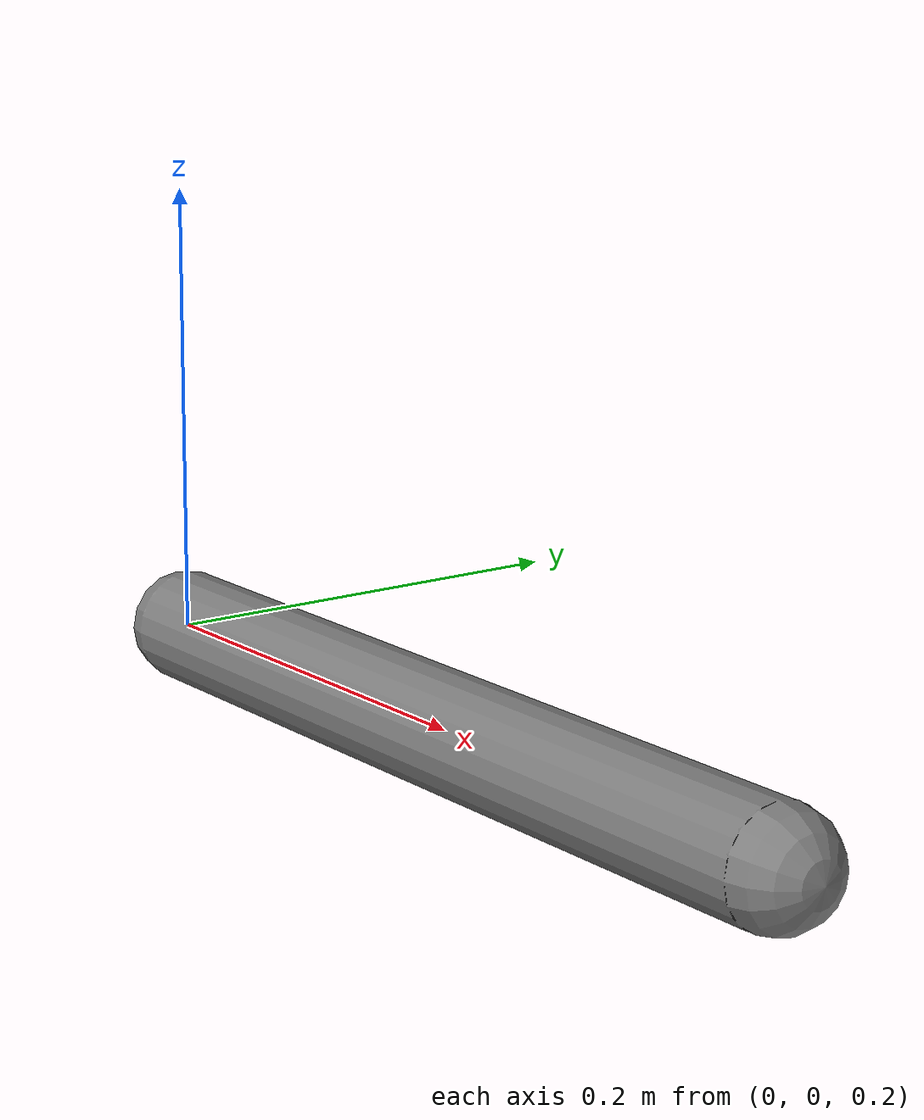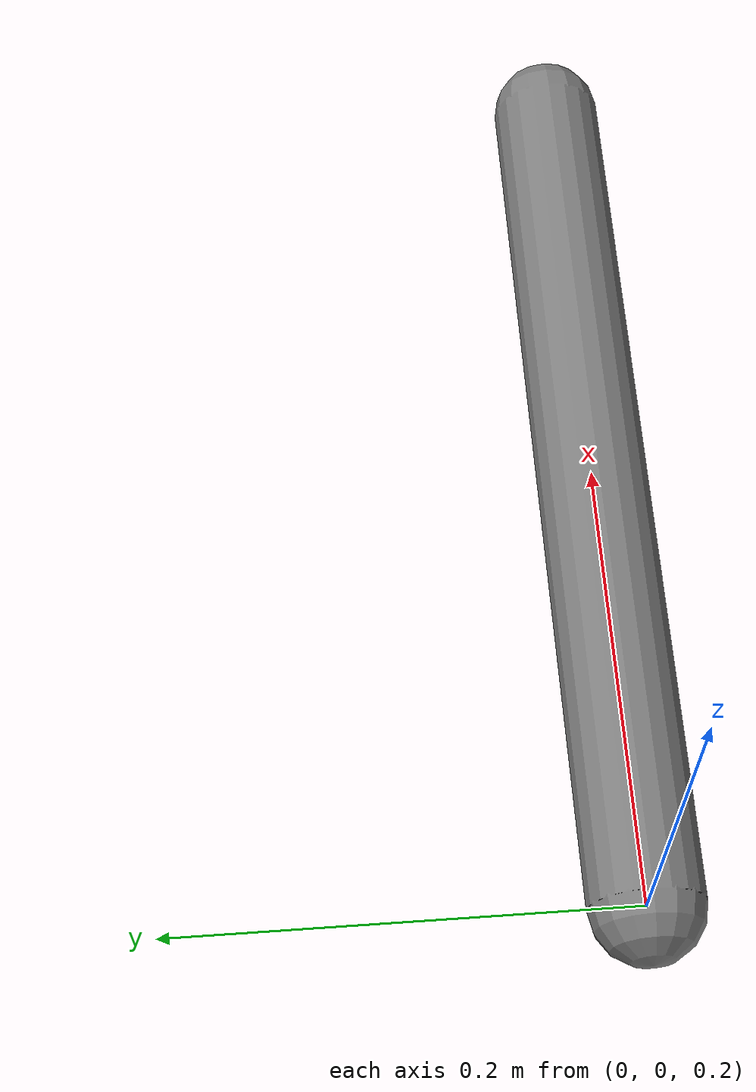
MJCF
<mujoco model="physicalrsi_hinge_fixture">
  <compiler angle="radian"/>
  <option timestep="0.002" gravity="0 0 0" integrator="implicitfast"/>
  <worldbody>
    <body name="link" pos="0 0 0.2">
      <joint name="axis" type="hinge" axis="0 0 1" range="-1 1" damping="0.15"/>
      <geom type="capsule" fromto="0 0 0 0.4 0 0" size="0.025" mass="1"/>
    </body>
  </worldbody>
  <actuator>
    <motor name="torque" joint="axis" ctrllimited="true" ctrlrange="-3 3"/>
  </actuator>
</mujoco>
